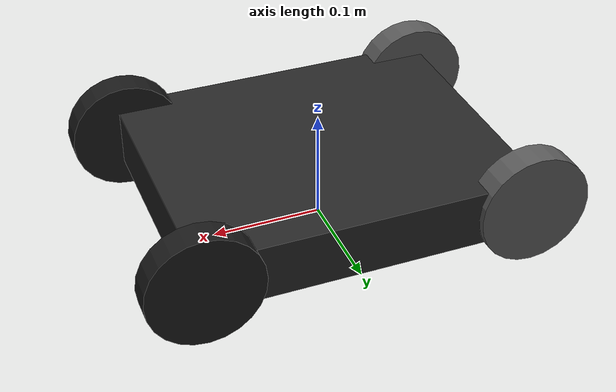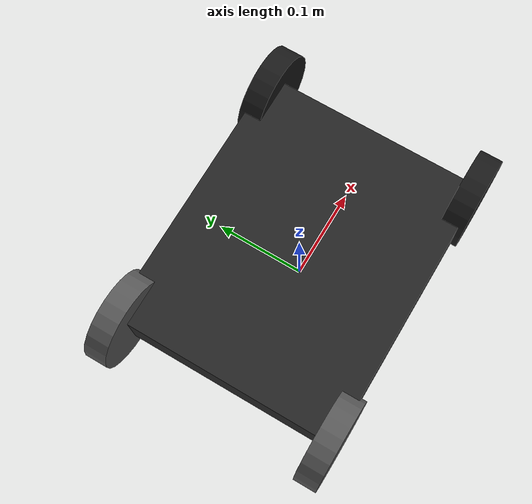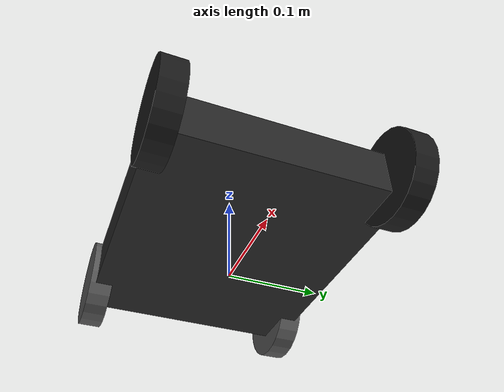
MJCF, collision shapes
<?xml version="1.0" ?>
<mujoco model="so101_platform">
  <compiler angle="radian" meshdir="assets" autolimits="true"/>

  <option timestep="0.002" gravity="0 0 -9.81" integrator="implicitfast"/>

  <default>
    <default class="platform">
      <geom contype="1" conaffinity="1" condim="3"/>
      <joint limited="false"/>
    </default>
    <default class="visual">
      <geom contype="0" conaffinity="0" group="2"/>
    </default>
    <default class="collision">
      <geom group="3"/>
    </default>
    <!-- STS3215 1/345 at the wheel output shaft (same joint dynamics as so101_new_calib). -->
    <default class="sts3215">
      <geom contype="0" conaffinity="0"/>
      <joint damping="0.60" frictionloss="0.052" armature="0.028" limited="false"/>
      <velocity kv="2.731" forcerange="-2.94 2.94"/>
    </default>
    <default class="omni_wheel">
      <joint type="ball" damping="0.01" frictionloss="0.001" armature="0.001"/>
    </default>
  </default>

  <worldbody>
    <!-- Body origin at wheel-axle height; 4 in diameter → 2 in (0.0508 m) above ground. -->
    <body name="platform" pos="0 0 0.0508" childclass="platform">
      <freejoint name="platform_free"/>

      <inertial
        pos="0 0 0"
        mass="2.5"
        fullinertia="0.02 0.03 0.04 0 0 0"/>

      <!-- Deck / chassis visual mesh (meters). Yaw π to match STL forward axis. -->
      <geom name="chassis_visual" type="mesh" class="visual"
        mesh="platform_chassis" quat="0 0 0 1" rgba="0.15 0.15 0.15 1"/>
      <geom name="chassis_collision" type="box" class="collision"
        size="0.1524 0.127 0.0254" quat="0 0 0 1" rgba="0.15 0.15 0.15 1"/>

      <site name="platform_center" pos="0 0 0" size="0.005" rgba="1 1 0 1"/>
      <site name="arm_mount" pos="0 0 0" quat="1 0 0 0" size="0.01" rgba="0 1 1 1"/>

      <!-- Front left drive wheel (+X, +Y). STS servo ID 7 on hardware. -->
      <body name="wheel_fl" pos="0.14605 0.12065 0">
        <joint name="wheel_left" type="hinge" axis="0 1 0" class="sts3215"/>
        <inertial pos="0 0 0" mass="0.15"
          fullinertia="0.0002 0.0003 0.0002 0 0 0"/>
        <geom name="wheel_fl_visual" type="mesh" class="visual"
          mesh="platform_wheel" pos="0 0 0" rgba="0.1 0.1 0.1 1"/>
        <geom name="wheel_fl_collision" type="cylinder" class="collision"
          friction="1.0 0.005 0.0001"
          size="0.0508" fromto="0 0.0127 0 0 -0.0127 0" rgba="0.1 0.1 0.1 1"/>
      </body>

      <!-- Front right drive wheel (+X, -Y). STS servo ID 8 on hardware. -->
      <body name="wheel_fr" pos="0.14605 -0.12065 0">
        <joint name="wheel_right" type="hinge" axis="0 1 0" class="sts3215"/>
        <inertial pos="0 0 0" mass="0.15"
          fullinertia="0.0002 0.0003 0.0002 0 0 0"/>
        <geom name="wheel_fr_visual" type="mesh" class="visual"
          mesh="platform_wheel" pos="0 0 0" rgba="0.1 0.1 0.1 1"/>
        <geom name="wheel_fr_collision" type="cylinder" class="collision"
          friction="1.0 0.005 0.0001"
          size="0.0508" fromto="0 0.0127 0 0 -0.0127 0" rgba="0.1 0.1 0.1 1"/>
      </body>

      <!-- Rear left omni (-X, +Y): cylinder look, ball joint, negligible ground friction. -->
      <body name="wheel_rl" pos="-0.14605 0.12065 0">
        <joint name="omni_left" class="omni_wheel"/>
        <inertial pos="0 0 0" mass="0.10"
          fullinertia="0.00015 0.0002 0.00015 0 0 0"/>
        <geom name="wheel_rl_visual" type="mesh" class="visual"
          mesh="platform_omniwheel" pos="0 0 0" rgba="0.35 0.35 0.35 1"/>
        <geom name="wheel_rl_collision" type="cylinder" class="collision"
          friction="0.001 0.001 0.001"
          size="0.0508" fromto="0 0.0127 0 0 -0.0127 0" rgba="0.35 0.35 0.35 1"/>
      </body>

      <!-- Rear right omni (-X, -Y). -->
      <body name="wheel_rr" pos="-0.14605 -0.12065 0">
        <joint name="omni_right" class="omni_wheel"/>
        <inertial pos="0 0 0" mass="0.10"
          fullinertia="0.00015 0.0002 0.00015 0 0 0"/>
        <geom name="wheel_rr_visual" type="mesh" class="visual"
          mesh="platform_omniwheel" pos="0 0 0" rgba="0.35 0.35 0.35 1"/>
        <geom name="wheel_rr_collision" type="cylinder" class="collision"
          friction="0.001 0.001 0.001"
          size="0.0508" fromto="0 0.0127 0 0 -0.0127 0" rgba="0.35 0.35 0.35 1"/>
      </body>
    </body>
  </worldbody>

  <asset>
    <mesh name="platform_chassis" file="ChassisV2.stl"/>
    <mesh name="platform_omniwheel" file="Omniwheel.stl"/>
    <mesh name="platform_wheel" file="FrontWheel.stl"/>
  </asset>

  <actuator>
    <!-- Wheel angular velocity (rad/s) at the STS output shaft. ±50 RPM ≈ ±5.236 rad/s. -->
    <velocity class="sts3215" name="wheel_left" joint="wheel_left"
      ctrllimited="true" ctrlrange="-5.236 5.236"/>
    <velocity class="sts3215" name="wheel_right" joint="wheel_right"
      ctrllimited="true" ctrlrange="-5.236 5.236"/>
  </actuator>

  <sensor>
    <!-- Encoder angle (rad, unwrapped) after rotation — map to 12-bit: round(pos * 4096 / (2π)) & 0xFFF -->
    <jointpos name="wheel_left_pos" joint="wheel_left"/>
    <jointpos name="wheel_right_pos" joint="wheel_right"/>
    <jointvel name="wheel_left_vel" joint="wheel_left"/>
    <jointvel name="wheel_right_vel" joint="wheel_right"/>
    <framepos name="platform_pos" objtype="body" objname="platform"/>
    <framequat name="platform_quat" objtype="body" objname="platform"/>
  </sensor>
</mujoco>
